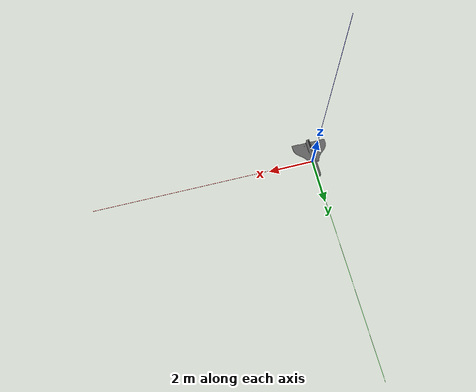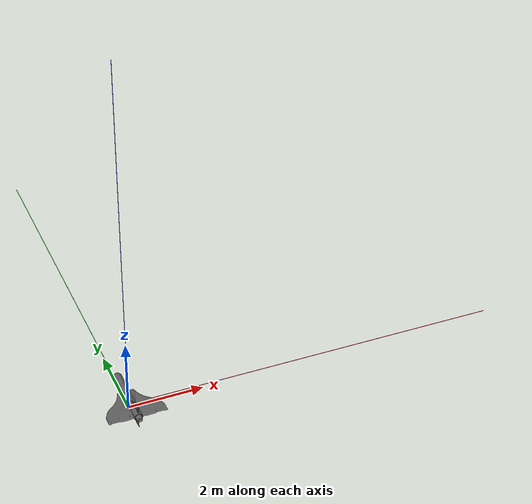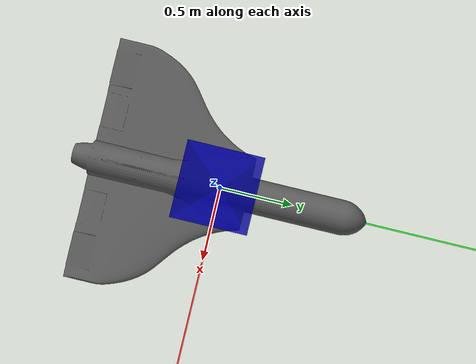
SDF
<sdf version="1.9">
 <world name="sr75_runway">
  <physics name="1ms" type="ignore">
   <max_step_size>0.001</max_step_size>
   <real_time_factor>-1.0</real_time_factor>
  </physics>
  <plugin filename="gz-sim-physics-system" name="gz::sim::systems::Physics"/>
  <plugin filename="gz-sim-user-commands-system" name="gz::sim::systems::UserCommands"/>
  <plugin filename="gz-sim-scene-broadcaster-system" name="gz::sim::systems::SceneBroadcaster"/>
  <plugin filename="gz-sim-imu-system" name="gz::sim::systems::Imu"/>
  <plugin filename="gz-sim-navsat-system" name="gz::sim::systems::NavSat"/>
  <scene><ambient>1.0 1.0 1.0</ambient><background>0.8 0.8 0.8</background></scene>
  <spherical_coordinates>
   <latitude_deg>-35.363262</latitude_deg>
   <longitude_deg>149.165237</longitude_deg>
   <elevation>584</elevation>
   <heading_deg>0</heading_deg>
   <surface_model>EARTH_WGS84</surface_model>
  </spherical_coordinates>
  <light type="directional" name="sun">
   <pose>0 0 10 0 0 0</pose>
   <diffuse>0.8 0.8 0.8 1</diffuse>
   <specular>0.8 0.8 0.8 1</specular>
   <attenuation>
    <range>1000</range>
    <constant>0.9</constant>
    <linear>0.01</linear>
    <quadratic>0.001</quadratic>
   </attenuation>
   <direction>-0.5 0.1 -0.9</direction>
  </light>
  <model name="axes">
   <static>1</static>
   <link name="link">
    <visual name="r">
     <cast_shadows>0</cast_shadows>
     <pose>5 0 0.1 0 0 0</pose>
     <geometry><box><size>10 0.01 0.01</size></box></geometry>
     <material>
      <ambient>1 0 0 0.8</ambient>
      <diffuse>1 0 0 0.8</diffuse>
      <emissive>1 0 0 0.8</emissive>
      <specular>0.5 0.5 0.5 0.8</specular>
     </material>
    </visual>
    <visual name="g">
     <cast_shadows>0</cast_shadows>
     <pose>0 5 0.1 0 0 0</pose>
     <geometry><box><size>0.01 10 0.01</size></box></geometry>
     <material>
      <ambient>0 1 0 0.8</ambient>
      <diffuse>0 1 0 0.8</diffuse>
      <emissive>0 1 0 0.8</emissive>
      <specular>0.5 0.5 0.5 0.8</specular>
     </material>
    </visual>
    <visual name="b">
     <cast_shadows>0</cast_shadows>
     <pose>0 0 5.1 0 0 0</pose>
     <geometry><box><size>0.01 0.01 10</size></box></geometry>
     <material>
      <ambient>0 0 1 0.8</ambient>
      <diffuse>0 0 1 0.8</diffuse>
      <emissive>0 0 1 0.8</emissive>
      <specular>0.5 0.5 0.5 0.8</specular>
     </material>
    </visual>
    <sensor name="navsat_sensor" type="navsat"><always_on>1</always_on><update_rate>1</update_rate></sensor>
   </link>
  </model>
  <include>
   <uri>model://sr75_skyreaper_with_ardupilot</uri>
   <pose degrees="true">0 0 0.35 0 0 180</pose>
  </include>
 </world>
</sdf>

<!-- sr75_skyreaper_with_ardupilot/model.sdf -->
<sdf version="1.9">
  <model name="sr75_skyreaper_with_ardupilot">
    <include>
      <uri>model://sr75_zephyr_physics</uri>
    </include>

    <!-- SR-75 main wing / body aerodynamic approximation -->
    <plugin filename="gz-sim-lift-drag-system"
        name="gz::sim::systems::LiftDrag">

      <!-- From MATLAB aero model:
          CL0 = 0.0221, CLa = 2.308
          zero-lift alpha a0 = -CL0 / CLa ≈ -0.0096 rad -->
      <a0>-0.0096</a0>
      <cla>2.308</cla>

      <!-- CD0 from MATLAB is 0.00798; using 0.02 for safer Gazebo first test -->
      <cda>0.02</cda>

      <!-- Pitch stability from MATLAB Cma = -1.764 -->
      <cma>-1.764</cma>

      <!-- Starting stall angle; can tune later -->
      <alpha_stall>0.20</alpha_stall>
      <cla_stall>-1.5</cla_stall>
      <cda_stall>1.0</cda_stall>
      <cma_stall>-0.5</cma_stall>

      <!-- Keep Zephyr coordinate convention for now -->
      <cp>0 -0.10 0</cp>

      <!-- Total S = 1.36 m2. Main wing/body gets most of area. -->
      <area>1.00</area>
      <air_density>1.225</air_density>

      <forward>0 -1 0</forward>
      <upward>0 0 1</upward>
      <link_name>zephyr::wing</link_name>
    </plugin>

    <!-- left_wing: symmetric to right_wing using SR-75 MATLAB aero params -->
    <plugin filename="gz-sim-lift-drag-system"
        name="gz::sim::systems::LiftDrag">
      <a0>-0.0096</a0>
      <cla>2.308</cla>
      <cda>0.03</cda>
      <cma>-0.5</cma>
      <alpha_stall>0.20</alpha_stall>
      <cla_stall>-1.5</cla_stall>
      <cda_stall>1.0</cda_stall>
      <cma_stall>-0.5</cma_stall>
      <cp>0.55 0.20 0</cp>
      <area>0.18</area>
      <air_density>1.225</air_density>
      <forward>0 -1 0</forward>
      <upward>0 0 1</upward>
      <link_name>zephyr::wing</link_name>
      <control_joint_name>zephyr::flap_left_joint</control_joint_name>
      <control_joint_rad_to_cl>0.45</control_joint_rad_to_cl>
    </plugin>
    <!-- right_wing -->
    <!-- SR-75 right elevon aerodynamic approximation -->
    <plugin filename="gz-sim-lift-drag-system"
        name="gz::sim::systems::LiftDrag">

      <a0>-0.0096</a0>
      <cla>2.308</cla>
      <cda>0.03</cda>
      <cma>-0.5</cma>

      <alpha_stall>0.20</alpha_stall>
      <cla_stall>-1.5</cla_stall>
      <cda_stall>1.0</cda_stall>
      <cma_stall>-0.5</cma_stall>

      <cp>-0.55 0.20 0</cp>
      <area>0.18</area>
      <air_density>1.225</air_density>

      <forward>0 -1 0</forward>
      <upward>0 0 1</upward>
      <link_name>zephyr::wing</link_name>

      <control_joint_name>zephyr::flap_right_joint</control_joint_name>

      <!-- MATLAB CLde = 0.45. Use negative sign to match current Zephyr convention. -->
      <control_joint_rad_to_cl>0.45</control_joint_rad_to_cl>
    </plugin>

    <!-- left_rudder -->
    <plugin filename="gz-sim-lift-drag-system"
        name="gz::sim::systems::LiftDrag">
      <a0>0.0</a0>
      <cla>4.752798721</cla>
      <cda>0.6417112299</cda>
      <cma>0.0</cma>
      <alpha_stall>0.3391428111</alpha_stall>
      <cla_stall>-3.85</cla_stall>
      <cda_stall>-0.9233984055</cda_stall>
      <cma_stall>0.0</cma_stall>
      <cp>-0.76 0.30 0.025</cp>
      <area>0.12</area>
      <air_density>1.2041</air_density>
      <forward>0 -1 0</forward>
      <upward>1 0 0</upward>
      <link_name>zephyr::wing</link_name>
    </plugin>
    <!-- right_rudder -->
    <plugin filename="gz-sim-lift-drag-system"
        name="gz::sim::systems::LiftDrag">
      <a0>0.0</a0>
      <cla>4.752798721</cla>
      <cda>0.6417112299</cda>
      <cma>0.0</cma>
      <alpha_stall>0.3391428111</alpha_stall>
      <cla_stall>-3.85</cla_stall>
      <cda_stall>-0.9233984055</cda_stall>
      <cma_stall>0.0</cma_stall>
      <cp>0.76 0.30 0.025</cp>
      <area>0.12</area>
      <air_density>1.2041</air_density>
      <forward>0 -1 0</forward>
      <upward>1 0 0</upward>
      <link_name>zephyr::wing</link_name>
    </plugin>
    <!-- propeller_blade_1 -->
    <plugin filename="gz-sim-lift-drag-system"
        name="gz::sim::systems::LiftDrag">
      <a0>0.30</a0>
      <alpha_stall>1.4</alpha_stall>
      <cla>4.2500</cla>
      <cda>0.10</cda>
      <cma>0.0</cma>
      <cla_stall>-0.025</cla_stall>
      <cda_stall>0.0</cda_stall>
      <cma_stall>0.0</cma_stall>
      <area>0.02</area>
      <air_density>1.2041</air_density>
      <cp>0 0 0.074205</cp>
      <forward>-1 0 0</forward>
      <upward>0 -1 0</upward>
      <link_name>zephyr::propeller</link_name>
    </plugin>
    <!-- propeller_blade_2 -->
    <plugin filename="gz-sim-lift-drag-system"
        name="gz::sim::systems::LiftDrag">
      <a0>0.30</a0>
      <alpha_stall>1.4</alpha_stall>
      <cla>4.2500</cla>
      <cda>0.10</cda>
      <cma>0.0</cma>
      <cla_stall>-0.025</cla_stall>
      <cda_stall>0.0</cda_stall>
      <cma_stall>0.0</cma_stall>
      <area>0.02</area>
      <air_density>1.2041</air_density>
      <cp>0 0 -0.074205</cp>
      <forward>1 0 0</forward>
      <upward>0 -1 0</upward>
      <link_name>zephyr::propeller</link_name>
    </plugin>

    <plugin filename="gz-sim-apply-joint-force-system"
      name="gz::sim::systems::ApplyJointForce">
      <joint_name>zephyr::propeller_joint</joint_name>
    </plugin>
    <plugin filename="gz-sim-apply-joint-force-system"
      name="gz::sim::systems::ApplyJointForce">
      <joint_name>zephyr::flap_left_joint</joint_name>
    </plugin>
    <plugin filename="gz-sim-apply-joint-force-system"
      name="gz::sim::systems::ApplyJointForce">
      <joint_name>zephyr::flap_right_joint</joint_name>
    </plugin>

    <plugin name="ArduPilotPlugin" filename="ArduPilotPlugin">
      <!-- Port settings -->
      <fdm_addr>127.0.0.1</fdm_addr>
      <fdm_port_in>9002</fdm_port_in>
      <connectionTimeoutMaxCount>5</connectionTimeoutMaxCount>
      <lock_step>1</lock_step>
      <no_time_sync>1</no_time_sync>

      <modelXYZToAirplaneXForwardZDown degrees="true">0 0 0 180 0 -90</modelXYZToAirplaneXForwardZDown>
      <gazeboXYZToNED degrees="true">0 0 0 180 0 90</gazeboXYZToNED>

      <!-- Sensors -->
      <imuName>zephyr::imu_link::imu_sensor</imuName>

      <!--
          incoming control command [0, 1]
          so offset it by 0 to get [0, 1]
          and divide max target by 1.
          offset = 0
          multiplier = 838 max rpm / 1 = 838
        -->

      <!--
          SERVO3_FUNCTION   70 (Throttle)
          SERVO3_MAX        1900
          SERVO3_MIN        1100
          SERVO3_REVERSED   0
          SERVO3_TRIM       1100
       -->

      <!-- SR-75 Phase 6A: central virtual jet thrust from SERVO3 -->
      <control channel="2">
        <type>LINK_FORCE</type>

      <!-- Main SR-75 body link inside included zephyr physics model -->
        <linkName>zephyr::wing</linkName>

      <!-- Body-frame forward in Zephyr/SR-75 is -Y; thrust must match -->
        <forceDirection>0 -1 0</forceDirection>

      <!-- Apply force near engine area; set 0 0 0 first if unstable -->
        <forceOffset>0 0 0</forceOffset>

      <!-- Initial safe total jet thrust -->
        <maxForce>1500</maxForce>

        <servo_min>1100</servo_min>
        <servo_max>1900</servo_max>
      </control>

      <control channel="0">
        <jointName>zephyr::flap_left_joint</jointName>
        <useForce>1</useForce>
        <multiplier>-1.048</multiplier>
        <offset>-0.5</offset>
        <servo_min>1100</servo_min>
        <servo_max>1900</servo_max>
        <type>POSITION</type>
        <p_gain>10.0</p_gain>
        <i_gain>0</i_gain>
        <d_gain>0</d_gain>
        <i_max>0</i_max>
        <i_min>0</i_min>
        <cmd_max>2.5</cmd_max>
        <cmd_min>-2.5</cmd_min>
      </control>

      <!--
          SERVO2_FUNCTION   78 (Elevon Right)
          SERVO2_MAX        1900
          SERVO2_MIN        1100
          SERVO2_REVERSED   1
          SERVO2_TRIM       1500
       -->
      <control channel="1">
        <jointName>zephyr::flap_right_joint</jointName>
        <useForce>1</useForce>
        <multiplier>-1.048</multiplier>
        <offset>-0.5</offset>
        <servo_min>1100</servo_min>
        <servo_max>1900</servo_max>
        <type>POSITION</type>
        <p_gain>10.0</p_gain>
        <i_gain>0</i_gain>
        <d_gain>0</d_gain>
        <i_max>0</i_max>
        <i_min>0</i_min>
        <cmd_max>2.5</cmd_max>
        <cmd_min>-2.5</cmd_min>
      </control>

    </plugin>

  </model>
</sdf>

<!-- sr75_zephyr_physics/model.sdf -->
<sdf version="1.9">
  <model name="zephyr">
    <link name="wing">

    <!-- SR-75 downward rangefinder placeholder -->
<sensor name="sr75_down_rangefinder" type="gpu_lidar">
  <pose>0 0 -0.25 0 1.5708 0</pose>
  <always_on>1</always_on>
  <update_rate>20</update_rate>
  <lidar>
    <scan>
      <horizontal>
        <samples>1</samples>
        <resolution>1</resolution>
        <min_angle>0</min_angle>
        <max_angle>0</max_angle>
      </horizontal>
      <vertical>
        <samples>1</samples>
        <resolution>1</resolution>
        <min_angle>0</min_angle>
        <max_angle>0</max_angle>
      </vertical>
    </scan>
    <range>
      <min>0.2</min>
      <max>50</max>
      <resolution>0.01</resolution>
    </range>
  </lidar>
</sensor>

<inertial>
  <!-- SR-75 inertial model, Phase 2 -->
  <!-- Dimensions used: wingspan b=1.6 m, chord c=0.625 m, approx length=1.53 m, height=0.65 m -->
  <!-- CGOffset from SR-75 JSON: [-0.15, 0.0, -0.05] -->
  <pose>-0.15 0 -0.05 0 0 0</pose>

  <mass>82.5</mass>

  <inertia>
    <!-- Approx box inertia: mass=82.5 kg, X=1.53 m, Y=1.6 m, Z=0.65 m -->
    <ixx>20.5</ixx>
    <ixy>0</ixy>
    <ixz>0</ixz>
    <iyy>19.0</iyy>
    <iyz>0</iyz>
    <izz>33.7</izz>
  </inertia>
</inertial>
<visual name="sr75_skyreaper_visual">
  <!-- STL exported in millimeters; Gazebo uses meters -->
  <!-- CAD center after mm to m: X=0.765, Y=0.936, Z=0.367 -->
  <pose>0.765 0.936 -0.367 0 0 3.14159</pose>

  <geometry>
    <mesh>
      <uri>model://sr75_zephyr_physics/meshes/Skyreaper_Base_model.STL</uri>
      <scale>0.001 0.001 0.001</scale>
    </mesh>
  </geometry>

  <material>
    <ambient>0.35 0.35 0.35 1</ambient>
    <diffuse>0.35 0.35 0.35 1</diffuse>
    <specular>0.1 0.1 0.1 1</specular>
  </material>
</visual>

<collision name="sr75_body_collision">
  <!-- Simple SR-75 collision box: length, wingspan, height -->
  <pose>0 0 0.05 0 0 0</pose>
  <geometry>
    <box>
      <size>1.50 0.35 0.35</size>
    </box>
  </geometry>
  <surface>
    <friction>
      <ode>
        <mu>0.4</mu>
        <mu2>0.4</mu2>
      </ode>
    </friction>
    <contact>
      <ode>
        <kp>100000</kp>
        <kd>10</kd>
        <max_vel>0.5</max_vel>
        <min_depth>0.001</min_depth>
      </ode>
    </contact>
  </surface>
</collision>

<collision name="nose_gear_collision">
  <pose>0.55 0 -0.28 0 0 0</pose>
  <geometry>
    <sphere>
      <radius>0.045</radius>
    </sphere>
  </geometry>
  <surface>
    <friction>
      <ode>
        <mu>0.05</mu>
        <mu2>0.05</mu2>
      </ode>
    </friction>
    <contact>
      <ode>
        <kp>50000</kp>
        <kd>5</kd>
        <max_vel>0.2</max_vel>
        <min_depth>0.001</min_depth>
      </ode>
    </contact>
  </surface>
</collision>

<collision name="left_main_gear_collision">
  <pose>-0.35 -0.35 -0.28 0 0 0</pose>
  <geometry>
    <sphere>
      <radius>0.055</radius>
    </sphere>
  </geometry>
  <surface>
    <friction>
      <ode>
        <mu>0.05</mu>
        <mu2>0.05</mu2>
      </ode>
    </friction>
    <contact>
      <ode>
        <kp>50000</kp>
        <kd>5</kd>
        <max_vel>0.2</max_vel>
        <min_depth>0.001</min_depth>
      </ode>
    </contact>
  </surface>
</collision>

<collision name="right_main_gear_collision">
  <pose>-0.35 0.35 -0.28 0 0 0</pose>
  <geometry>
    <sphere>
      <radius>0.055</radius>
    </sphere>
  </geometry>
  <surface>
    <friction>
      <ode>
        <mu>0.05</mu>
        <mu2>0.05</mu2>
      </ode>
    </friction>
    <contact>
      <ode>
        <kp>50000</kp>
        <kd>5</kd>
        <max_vel>0.2</max_vel>
        <min_depth>0.001</min_depth>
      </ode>
    </contact>
  </surface>
</collision>

<!-- Add camera here, before closing wing link -->
<!-- SR-75 nose camera sensor, visual/perception only for now -->

      <!-- save center of pressure locations for debugging -->

    </link>
    <link name="propeller">
      <pose degrees="true">0 0.07 0.008 0 90 0</pose>
      <inertial>
        <mass>.05</mass>
        <inertia>
          <ixx>0.000367571</ixx>
          <ixy>0</ixy>
          <iyy>0.00036985</iyy>
          <ixz>0</ixz>
          <iyz>0</iyz>
          <izz>0.000003187</izz>
        </inertia>
      </inertial>
      <collision name="blade1">
        <pose>0 0 0.074205 0 0  0.3</pose>
        <geometry>
          <box>
            <size>0.02561 0.00541 0.14841</size>
          </box>
        </geometry>
      </collision>
      <collision name="blade2">
        <pose>0 0 -0.074205 0 0  -0.3</pose>
        <geometry>
          <box>
            <size>0.02561 0.00541 0.14841</size>
          </box>
        </geometry>
      </collision>
    </link>
    <link name="flap_left">
      <pose>0.4530 .239 0.007 0 0 0</pose>
      <inertial>
        <pose>0 0 0 0 0 0.32445671</pose>
        <mass>.1</mass>
        <inertia>
          <ixx>0.000102319</ixx>
          <ixy>0</ixy>
          <iyy>0.00334417</iyy>
          <ixz>0</ixz>
          <iyz>0</iyz>
          <izz>0.003446072</izz>
        </inertia>
      </inertial>
      <collision name="collision">
        <pose>-0.01 0.01 0 0 0 0.32445671</pose>
        <geometry>
          <box>
            <size>0.633463031 0.110694312 0.005</size>
          </box>
        </geometry>
      </collision>
    </link>
    <link name="flap_right">
      <pose>-0.4530 .239 0.007 0 0 0</pose>
      <inertial>
        <pose>0 0 0 0 0 -0.32445671</pose>
        <mass>.1</mass>
        <inertia>
          <ixx>0.000102319</ixx>
          <ixy>0</ixy>
          <iyy>0.00334417</iyy>
          <ixz>0</ixz>
          <iyz>0</iyz>
          <izz>0.003446072</izz>
        </inertia>
      </inertial>
      <collision name="collision">
        <pose>0.01 0.01 0 0 0 -0.32445671</pose>
        <geometry>
          <box>
            <size>0.633463031 0.110694312 0.005</size>
          </box>
        </geometry>
      </collision>
    </link>
    <joint name="propeller_joint" type="revolute">
      <parent>wing</parent>
      <child>propeller</child>
      <axis>
        <xyz>0 -1 0</xyz>
        <dynamics>
          <damping>0.002</damping>
        </dynamics>
      </axis>
    </joint>
    <joint name="flap_left_joint" type="revolute">
      <parent>wing</parent>
      <child>flap_left</child>
      <pose>0 -0.04 0 0 0 0</pose>
      <axis>
        <xyz>1 0.330321014 0</xyz>
        <limit>
          <lower>-0.524</lower>
          <upper>0.524</upper>
        </limit>
        <dynamics>
          <damping>0.1</damping>
        </dynamics>
      </axis>
    </joint>
    <joint name="flap_right_joint" type="revolute">
      <parent>wing</parent>
      <child>flap_right</child>
      <pose>0 -0.04 0 0 0 0</pose>
      <axis>
        <xyz>1 -0.330321014 0</xyz>
        <limit>
          <lower>-0.524</lower>
          <upper>0.524</upper>
        </limit>
        <dynamics>
          <damping>0.1</damping>
        </dynamics>
      </axis>
    </joint>

    <!-- sensors -->
    <link name='imu_link'>
      <inertial>
        <pose>0 0 0 0 0 0</pose>
        <mass>0.15</mass>
        <inertia>
          <ixx>0.00002</ixx>
          <ixy>0</ixy>
          <ixz>0</ixz>
          <iyy>0.00002</iyy>
          <iyz>0</iyz>
          <izz>0.00002</izz>
        </inertia>
      </inertial>
      <sensor name="imu_sensor" type="imu">
        <gz_frame_id>imu_link</gz_frame_id>
        <pose degrees="true">0 0 0 180 0 -90</pose>
        <always_on>1</always_on>
        <update_rate>1000.0</update_rate>
      </sensor>
    </link>
    <joint name='imu_joint' type='revolute'>
      <child>imu_link</child>
      <parent>wing</parent>
      <axis>
        <xyz>0 0 1</xyz>
        <limit>
          <lower>0</lower>
          <upper>0</upper>
          <effort>0</effort>
          <velocity>0</velocity>
        </limit>
        <dynamics>
          <damping>1.0</damping>
        </dynamics>
      </axis>
    </joint>

<!-- SR-75 Left Engine (virtual jet thrust point) -->
<link name="left_engine_link">
  <pose>-0.55 -0.25 0 0 0 0</pose>
  <inertial>
    <mass>0.001</mass>
    <inertia>
      <ixx>0.000001</ixx><ixy>0</ixy><ixz>0</ixz>
      <iyy>0.000001</iyy><iyz>0</iyz>
      <izz>0.000001</izz>
    </inertia>
  </inertial>
</link>

<!-- SR-75 Right Engine (virtual jet thrust point) -->
<link name="right_engine_link">
  <pose>-0.55 0.25 0 0 0 0</pose>
  <inertial>
    <mass>0.001</mass>
    <inertia>
      <ixx>0.000001</ixx><ixy>0</ixy><ixz>0</ixz>
      <iyy>0.000001</iyy><iyz>0</iyz>
      <izz>0.000001</izz>
    </inertia>
  </inertial>
</link>

<!-- Fix engine links rigidly to main wing body -->
<joint name="left_engine_joint" type="fixed">
  <parent>wing</parent>
  <child>left_engine_link</child>
</joint>

<joint name="right_engine_joint" type="fixed">
  <parent>wing</parent>
  <child>right_engine_link</child>
</joint>

  </model>
</sdf>
